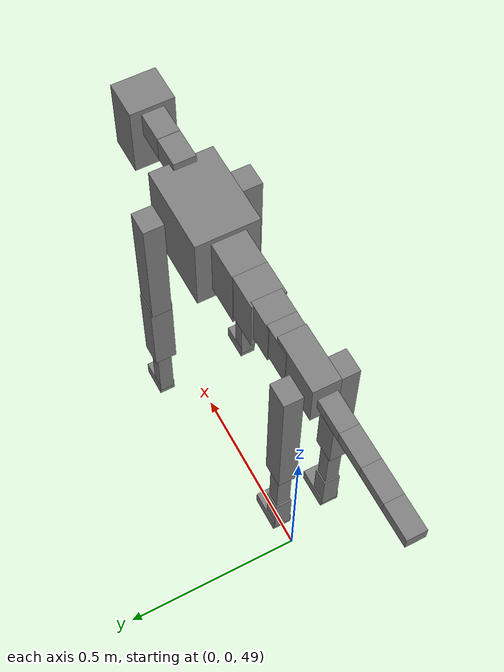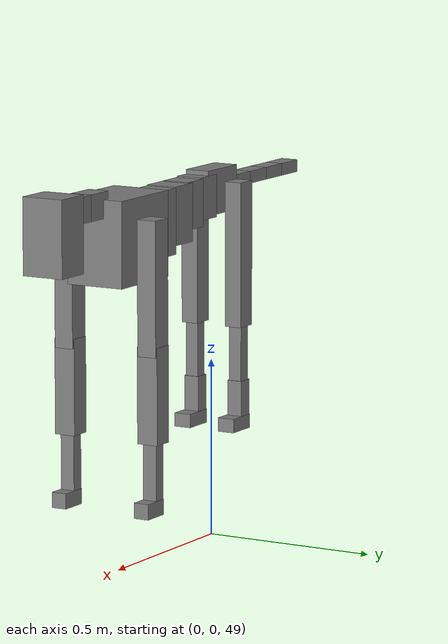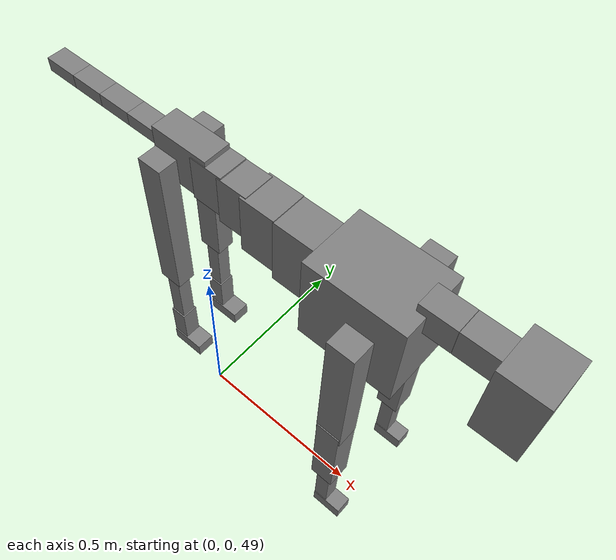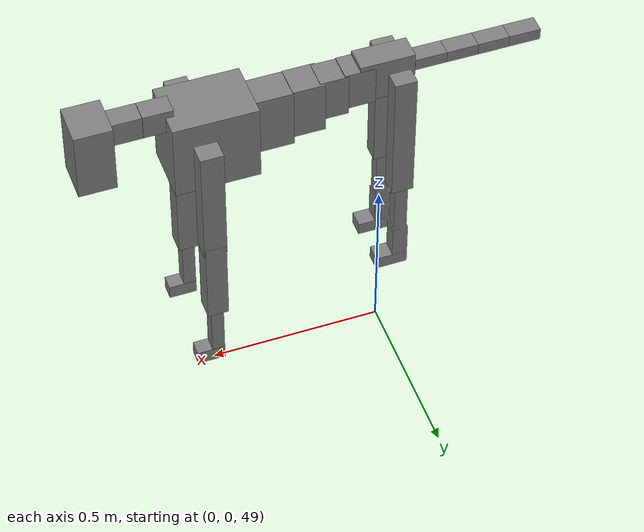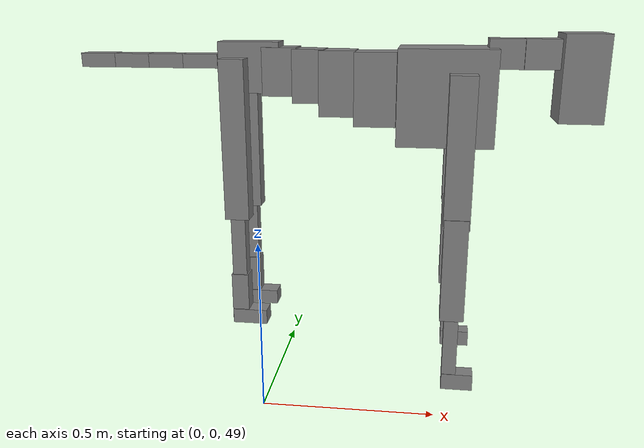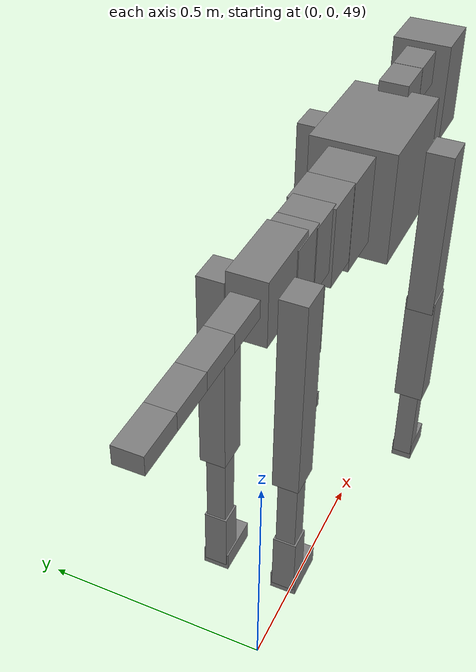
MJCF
<mujoco model="dog">

    <default>
        <joint armature="0.02" stiffness="1" damping="0.2" limited="true"/>
        <geom condim="3" friction="1 0.05 0.05" margin="0.01"/>
        <motor ctrllimited="true" ctrlrange="-1.0 1.0" forcelimited="true" gear="50"/>
    </default>

    <compiler inertiafromgeom="true" angle="radian"/>

    <option timestep="0.016" iterations="50" tolerance="1e-10" solver="Newton" jacobian="dense" cone="pyramidal"/>

    <size nconmax="20000" njmax="60000" nstack="5000000"/>
    <visual>
        <map force="0.1" zfar="30"/>
        <rgba haze="0.15 0.25 0.35 1"/>
        <quality shadowsize="2048"/>
        <global offwidth="800" offheight="800"/>
    </visual>

    <asset>
        <texture type="skybox" builtin="gradient" rgb1="0.3 0.5 0.7" rgb2="0 0 0" width="512" height="512"/>
        <texture name="texplane" type="2d" builtin="checker" rgb1=".2 .3 .4" rgb2=".1 0.15 0.2" width="512" height="512"
                 mark="cross" markrgb=".8 .8 .8"/>
        <texture name="texgeom" type="cube" builtin="flat" mark="cross" width="127" height="1278" rgb1="0.8 0.6 0.4"
                 rgb2="0.8 0.6 0.4" markrgb="1 1 1" random="0.01"/>

        <material name="matplane" reflectance="0.3" texture="texplane" texrepeat="1 1" texuniform="true"/>
        <material name="matgeom" texture="texgeom" texuniform="true" rgba="0.8 0.6 .4 1"/>
    </asset>

    <worldbody>
        <geom name="floor" pos="0 0 0" size="0 0 .25" type="plane" material="matplane" condim="3"/>

        <light directional="false" diffuse=".2 .2 .2" specular="0 0 0" pos="0 0 5" dir="0 0 -1" castshadow="false"/>
        <light mode="targetbodycom" target="torso" directional="false" diffuse=".8 .8 .8" specular="0.3 0.3 0.3"
               pos="0 0 4.0" dir="0 0 -1"/>

        <body name="root" pos="0 0 50">
            <freejoint name="root_1"/>
            <geom type="box" pos="0 0 -0.02" size="0.0774  0.0358  0.063" density="2030"/>

            <body name="spine1" pos="0.054 0 0">
                <joint name="spine1_y" axis="0 1 0" range="0 0.7" limited="true"/>
                <geom type="box" pos="0.02375 0 -0.03" size="0.04375  0.0375  0.05985" density="2030"/>

                <body name="spine2" pos="0.0612 0 0">
                    <joint name="spine2_y" axis="0 1 0" range="-0.15 0.15" limited="true"/>
                    <geom type="box" pos="0.03555  0  -0.04" size="0.04055  0.039  0.06615" density="2030"/>

                    <body name="spine3" pos="0.0730 0 0">
                        <joint name="spine3_y" axis="0 1 0" range="-0.15 0.15" limited="true"/>
                        <geom type="box" pos="0.03555  0  -0.057" size="0.04555  0.0445  0.081" density="2030"/>

                        <body name="spine4" pos="0.0780 0 0">
                            <joint name="spine4_y" axis="0 1 0" range="-0.15 0.15" limited="true"/>
                            <geom type="box" pos="0.05265  0  -0.07" size="0.05265  0.045  0.09135" density="2030"/>

                            <body name="torso" pos="0.1082 0 0">
                                <joint name="torso_y" axis="0 1 0" range="-0.15 0.15" limited="true"/>
                                <geom type="box" pos="0.11925  0  -0.085" size="0.11925  0.085  0.11745"
                                      density="2030"/>

                                <body name="neck1" pos="0.2160  0   0.0180">
                                    <joint name="neck1_y" axis="0 1 0" range="-1.2  -1" limited="true"/>
                                    <geom type="box" pos="0.0423  0  0" size="0.0423  0.03  0.036" density="2325"/>

                                    <body name="neck2" pos="0.0853  0  0">
                                        <joint name="neck2_y" axis="0 1 0" range="0.1  0" limited="true"/>
                                        <geom type="box" pos="0.0423  0  0" size="0.0423  0.03  0.036" density="2325"/>

                                        <body name="head" pos="0.0853  0  0">
                                            <joint name="head_y" axis="0 1 0" range="-0.3  -0.2" limited="true"/>
                                            <geom type="box" pos="0.0531  0  -0.055" size="0.0531  0.06  0.1044"
                                                  density="4030"/>

                                        </body>
                                    </body>
                                </body>

                                <body name="front_shoulder" pos="0.156  0   -0.0480">
                                    <joint name="front_shoulder_y" axis="0 1 0" range="-1 1.5" limited="true"/>
                                    <geom type="box" pos="0 0.13 -0.1574" size="0.0325  0.0278  0.1840" density="1158"/>
                                    <geom type="box" pos="0 -0.13 -0.1574" size="0.0325  0.0278  0.1840"
                                          density="1158"/>

                                    <body name="front_elbow" pos="0  0  -0.3148">
                                        <joint name="front_elbow_y" axis="0 1 0" range="-2 0" limited="true"/>
                                        <geom type="box" pos="0 0.13 -0.1324" size="0.0300  0.0306  0.1324"
                                              density="1081"/>
                                        <geom type="box" pos="0 -0.13 -0.1324" size="0.0300  0.0306  0.1324"
                                              density="1081"/>

                                        <body name="front_wrist" pos="0  0  -0.2649">
                                            <joint name="front_wrist_y" axis="0 1 0" range="-0.2 0" limited="true"/>
                                            <geom type="box" pos="0 0.13 -0.0845" size="0.0183  0.0203  0.0977"
                                                  density="1664"/>
                                            <geom type="box" pos="0 -0.13 -0.0845" size="0.0183  0.0203  0.0977"
                                                  density="1664"/>

                                            <body name="front_finger_end" pos="0  0  -0.1691">
                                                <joint name="front_finger_y" axis="0 1 0" range="-0.4 1"
                                                       limited="true"/>
                                                <geom type="box" pos="0.0219  0.13  -0.0064"
                                                      size="0.0401  0.0219  0.0214" density="1515"/>
                                                <geom type="box" pos="0.0219  -0.13  -0.0064"
                                                      size="0.0401  0.0219  0.0214" density="1515"/>

                                            </body>

                                        </body>
                                    </body>
                                </body>

                            </body>
                        </body>
                    </body>
                </body>
            </body>

            <body name="back_hip" pos="-0.03 0 -0.018">
                <joint name="back_hip_y" axis="0 1 0" range="-1.5 0.3" limited="true"/>
                <geom type="box" pos="0 0.07 -0.1804" size="0.0315  0.0247  0.2032" density="1154"/>
                <geom type="box" pos="0 -0.07 -0.1804" size="0.0315  0.0247  0.2032" density="1154"/>

                <body name="back_knee" pos="0  0  -0.3609">
                    <joint name="back_knee_y" axis="0 1 0" range="0 2.8" limited="true"/>
                    <geom type="box" pos="0 0.07 -0.0937" size="0.0188  0.0186  0.1093" density="1227"/>
                    <geom type="box" pos="0 -0.07 -0.0937" size="0.0188  0.0186  0.1093" density="1227"/>

                    <body name="back_ankle" pos="0  0  -0.1875">
                        <joint name="back_ankle_y" axis="0 1 0" range="-2.2 0" limited="true"/>
                        <geom type="box" pos="0 0.07 -0.0514" size="0.0221  0.0221  0.0627" density="1284"/>
                        <geom type="box" pos="0 -0.07 -0.0514" size="0.0221  0.0221  0.0627" density="1284"/>

                        <body name="back_toe_end" pos="0  0  -0.1028">
                            <joint name="back_toe_y" axis="0 1 0" range="-0.4 1" limited="true"/>
                            <geom type="box" pos="0.0250  0.07  -0.0044" size="0.0458  0.0250  0.0194" density="1515"/>
                            <geom type="box" pos="0.0250  -0.07  -0.0044" size="0.0458  0.0250  0.0194" density="1515"/>

                        </body>
                    </body>
                </body>
            </body>

            <body name="tail1" pos="-0.074 0 -0.006">
                <joint name="tail1_y" axis="0 1 0" range="-0.2 0.2" limited="true"/>
                <geom type="box" pos="-0.0536  0  0" size="0.045  0.025  0.0175" density="1587"/>

                <body name="tail2" pos="-0.09 0 0">
                    <joint name="tail2_y" axis="0 1 0" range="-0.2 0.2" limited="true"/>
                    <geom type="box" pos="-0.0536  0  0" size="0.045  0.025  0.0175" density="1587"/>

                    <body name="tail3" pos="-0.09 0 0">
                        <joint name="tail3_y" axis="0 1 0" range="-0.2 0.2" limited="true"/>
                        <geom type="box" pos="-0.0536  0  0" size="0.045  0.025  0.0175" density="1587"/>

                        <body name="tail4" pos="-0.09 0 0">
                            <joint name="tail4_y" axis="0 1 0" range="-0.2 0.2" limited="true"/>
                            <geom type="box" pos="-0.0536  0  0" size="0.045  0.025  0.0175" density="1587"/>

                        </body>
                    </body>
                </body>
            </body>
        </body>
    </worldbody>

    <actuator>
        <motor joint="spine1_y" forcerange="-150 150     "/>
        <motor joint="spine2_y" forcerange="-150 150     "/>
        <motor joint="spine3_y" forcerange="-150 150     "/>
        <motor joint="spine4_y" forcerange="-150 150     "/>
        <motor joint="torso_y" forcerange="-150 150     "/>
        <motor joint="neck1_y" forcerange="-100 100       "/>
        <motor joint="neck2_y" forcerange="-100 100       "/>
        <motor joint="head_y" forcerange="-150 150       "/>
        <motor joint="front_shoulder_y" forcerange="-145.93 139.36"/>
        <motor joint="front_elbow_y" forcerange="-175.22 147.63"/>
        <motor joint="front_wrist_y" forcerange="-54.58 107.89"/>
        <motor joint="front_finger_y" forcerange="-45.28 31.48"/>
        <motor joint="back_hip_y" forcerange="-297.04 232.42"/>
        <motor joint="back_knee_y" forcerange="-227.40 242.67"/>
        <motor joint="back_angle_y" forcerange="-196.71 57.42"/>
        <motor joint="back_toe_y" forcerange="-32.38 87.52"/>
        <motor joint="tail1_y" forcerange="-50 50     "/>
        <motor joint="tail2_y" forcerange="-50 50     "/>
        <motor joint="tail3_y" forcerange="-50 50     "/>
        <motor joint="tail4_y" forcerange="-50 50     "/>
    </actuator>
</mujoco>
